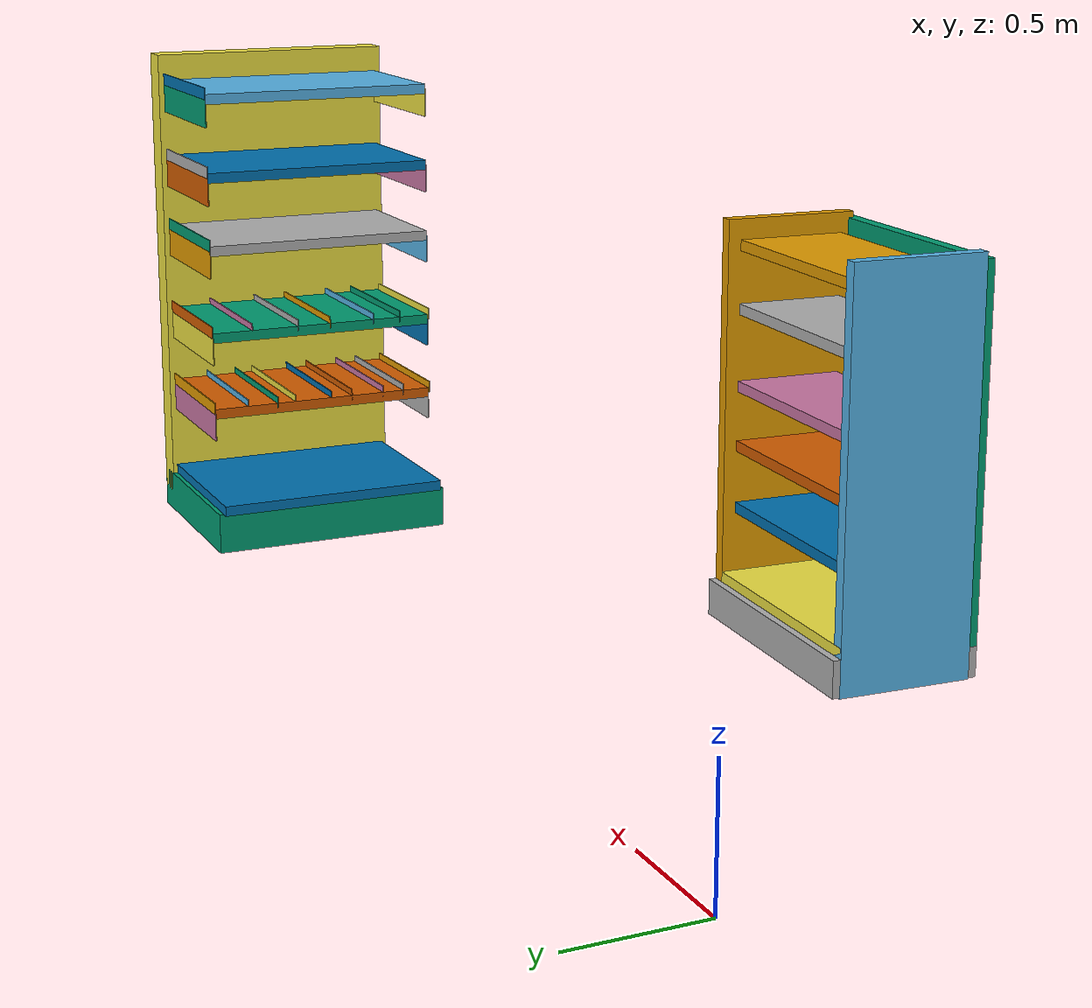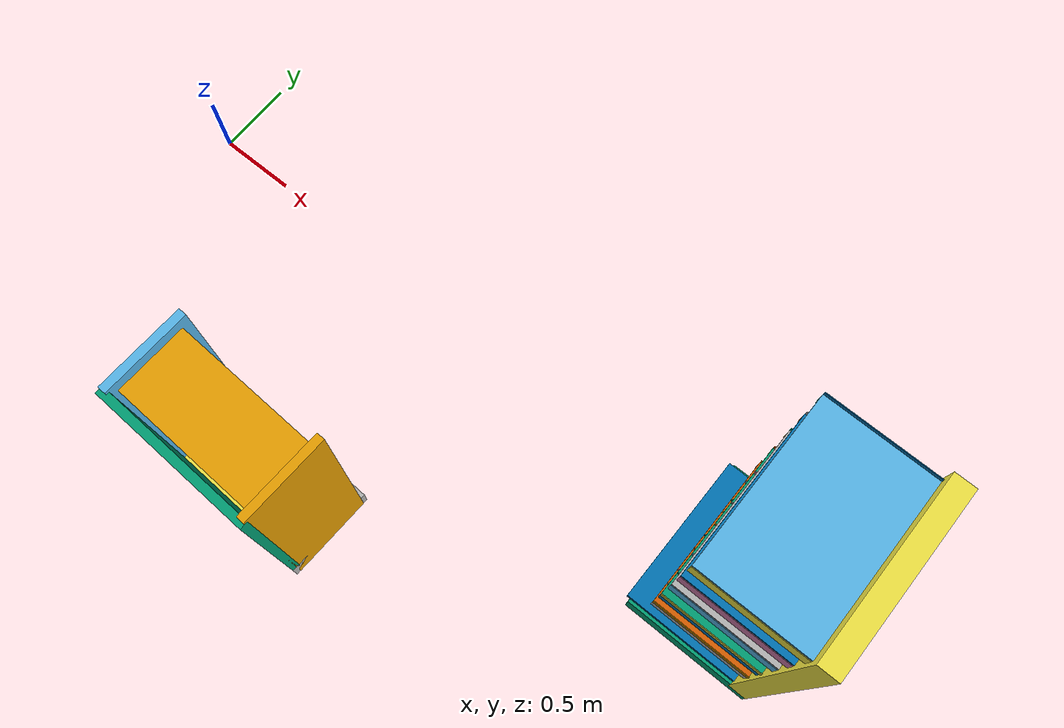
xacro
<?xml version="1.0"?>
<robot name="dm_shelves" xmlns:xacro="http://ros.org/wiki/xacro">

<link name="room_link"/>
    <macro name="divider_link" params="parent name *origin">

        <link name="shelf_1_${name}_link">
            <visual>
                <geometry>
                    <box size="0.004 0.65 0.05"/>
                </geometry>
            </visual>
            <collision>
                <geometry>
                    <box size="0.004 0.65 0.05"/>
                </geometry>
            </collision>
        </link>

        <joint type="fixed" name="shelf_1_${name}_joint">
            <xacro:insert_block name="origin"/>
            <parent link="${parent}"/>
            <child link="shelf_1_${name}_link"/>
        </joint>
    </macro>

    <macro name="shelf_divider" params="parent name dist1 dist2 dist3 dist4 dist5 dist6 dist7 dist8 dist9">
        <divider_link parent="${parent}" name="${name}_divider_1">
            <origin xyz="-0.495 0 0.024"/>
        </divider_link>

        <divider_link parent="${parent}" name="${name}_divider_2">
            <origin xyz="${-0.495 + dist1} 0 0.024"/>
        </divider_link>

        <divider_link parent="${parent}" name="${name}_divider_3">
            <origin xyz="${-0.495 + dist1 + dist2} 0 0.024"/>
        </divider_link>

        <divider_link parent="${parent}" name="${name}_divider_4">
            <origin xyz="${-0.495 + dist1 + dist2 + dist3} 0 0.024"/>
        </divider_link>

        <divider_link parent="${parent}" name="${name}_divider_5">
            <origin xyz="${-0.495 + dist1 + dist2 + dist3 + dist4} 0 0.024"/>
        </divider_link>

        <divider_link parent="${parent}" name="${name}_divider_6">
            <origin xyz="${-0.495 + dist1 + dist2 + dist3 + dist4 + dist5} 0 0.024"/>
        </divider_link>

        <divider_link parent="${parent}" name="${name}_divider_7">
            <origin xyz="${-0.495 + dist1 + dist2 + dist3 + dist4 + dist5 + dist6} 0 0.024"/>
        </divider_link>

        <divider_link parent="${parent}" name="${name}_divider_8">
            <origin xyz="${-0.495 + dist1 + dist2 + dist3 + dist4 + dist5 + dist6 + dist7} 0 0.024"/>
        </divider_link>

        <divider_link parent="${parent}" name="${name}_divider_9">
            <origin xyz="${-0.495 + dist1 + dist2 + dist3 + dist4 + dist5 + dist6 + dist7 + dist8} 0 0.024"/>
        </divider_link>

        <divider_link parent="${parent}" name="${name}_divider_10">
            <origin xyz="${-0.495 + dist1 + dist2 + dist3 + dist4 + dist5 + dist6 + dist7 + dist8 + dist9} 0 0.024"/>
        </divider_link>

    </macro>

    <macro name="shelf_1_level" params="name parent *origin dist1 dist2 dist3 dist4 dist5 dist6 dist7 dist8 dist9">
        <link name="shelf_1_${name}_link">
            <visual>
                <geometry>
                    <box size="0.988 0.65 0.043"/>
                </geometry>
            </visual>
            <collision>
                <geometry>
                    <box size="0.988 0.65 0.043"/>
                </geometry>
            </collision>
        </link>

        <link name="shelf_1_${name}_left_support_link">
            <visual>
                <geometry>
                    <box size="0.004 0.65 0.12"/>
                </geometry>
            </visual>
            <collision>
                <geometry>
                    <box size="0.004 0.65 0.12"/>
                </geometry>
            </collision>
        </link>

        <link name="shelf_1_${name}_right_support_link">
            <visual>
                <geometry>
                    <box size="0.004 0.65 0.12"/>
                </geometry>
            </visual>
            <collision>
                <geometry>
                    <box size="0.004 0.65 0.12"/>
                </geometry>
            </collision>
        </link>

        <joint type="fixed" name="shelf_1_${name}_joint">
            <xacro:insert_block name="origin"/>
            <parent link="${parent}"/>
            <child link="shelf_1_${name}_link"/>
        </joint>

        <joint type="fixed" name="shelf_1_${name}_right_support_joint">
            <origin xyz="0.494 0 -0.06"/>
            <parent link="shelf_1_${name}_link"/>
            <child link="shelf_1_${name}_right_support_link"/>
        </joint>

        <joint type="fixed" name="shelf_1_${name}_left_support_joint">
            <origin xyz="-0.494 0 -0.06"/>
            <parent link="shelf_1_${name}_link"/>
            <child link="shelf_1_${name}_left_support_link"/>
        </joint>

        <shelf_divider parent="shelf_1_${name}_link" name="${name}" dist1="${dist1}" dist2="${dist2}" dist3="${dist3}" dist4="${dist4}" dist5="${dist5}" dist6="${dist6}" dist7="${dist7}" dist8="${dist8}" dist9="${dist9}" />

    </macro>

    <macro name="shelf_2_level" params="name parent *origin">
        <link name="shelf_2_${name}_link">
            <visual>
                <geometry>
                    <box size="0.992 0.435 0.043"/>
                </geometry>
            </visual>
            <collision>
                <geometry>
                    <box size="0.992 0.435 0.043"/>
                </geometry>
            </collision>
        </link>

        <joint type="fixed" name="shelf_2_${name}_joint">
            <xacro:insert_block name="origin"/>
            <parent link="${parent}"/>
            <child link="shelf_2_${name}_link"/>
        </joint>

    </macro>

    <macro name="shelf_1" params="*origin parent">
    <link name="shelf_1_footprint"/>

    <joint type="fixed" name="romm_shleve_1_joint">
        <xacro:insert_block name="origin"/>
        <parent link="${parent}"/>
        <child link="shelf_1_footprint"/>
    </joint>

    <link name="shelf_1_base">
        <visual>
            <geometry>
                <box size="1.04 0.85 0.173"/>
            </geometry>
        </visual>
        <collision>
           <geometry>
                <box size="1.04 0.85 0.173"/>
            </geometry>
        </collision>
    </link>

    <joint type="fixed" name="foot_base_joint">
        <iorigin xyz="0 0 0"/>
        <parent link="shelf_1_footprint"/>
        <child link="shelf_1_base"/>
    </joint>

    <link name="shelf_1_back">
        <visual>
            <geometry>
                <box size="1.04 0.12 2"/>
            </geometry>
        </visual>
        <collision>
           <geometry>
                <box size="1.04 0.12 2"/>
            </geometry>
        </collision>
    </link>

    <joint type="fixed" name="foot_back_joint">
        <origin xyz="0 0.365 1"/>
        <parent link="shelf_1_footprint"/>
        <child link="shelf_1_back"/>
    </joint>

    <link name="shelf_1_level_0_link">
        <visual>
            <geometry>
                <box size="1 0.78 0.043"/>
            </geometry>
        </visual>
        <collision>
           <geometry>
                <box size="1 0.78 0.043"/>
            </geometry>
        </collision>
    </link>

    <joint type="fixed" name="shelf_1_level_0_joint">
        <origin xyz="0 -0.06 0.10665"/>
        <parent link="shelf_1_footprint"/>
        <child link="shelf_1_level_0_link"/>
    </joint>

    <shelf_1_level name="level_1" parent="shelf_1_footprint" dist1="0.15" dist2="0.133" dist3="0.082" dist4="0.167" dist5="0.095" dist6="0.148" dist7="0.095" dist8="0.125" dist9="0" >
        <origin xyz="0 0 0.50965" />
    </shelf_1_level>

    <shelf_1_level name="level_2" parent="shelf_1_footprint" dist1="0.177" dist2="0.208" dist3="0.147" dist4="0.20" dist5="0.124" dist6="0.14" dist7="0" dist8="0" dist9="0" >
        <origin xyz="0 0 0.84465" />
    </shelf_1_level>

    <shelf_1_level name="level_3" parent="shelf_1_footprint" dist1="0" dist2="0" dist3="0" dist4="0" dist5="0" dist6="0" dist7="0" dist8="0" dist9="0" >
        <origin xyz="0 0 1.22265" />
    </shelf_1_level>

    <shelf_1_level name="level_4" parent="shelf_1_footprint" dist1="0" dist2="0" dist3="0" dist4="0" dist5="0" dist6="0" dist7="0" dist8="0" dist9="0" >
        <origin xyz="0 0 1.53565" />
    </shelf_1_level>

    <shelf_1_level name="level_5" parent="shelf_1_footprint" dist1="0" dist2="0" dist3="0" dist4="0" dist5="0" dist6="0" dist7="0" dist8="0" dist9="0" >
        <origin xyz="0 0 1.86865" />
    </shelf_1_level>
</macro>

    <!-- Shelve 2 -->
    <macro name="shelf_2" params="*origin parent">
     <link name="shelf_2_footprint"/>

    <joint type="fixed" name="romm_shleve_2_joint">
        <xacro:insert_block name="origin"/>
        <parent link="${parent}"/>
        <child link="shelf_2_footprint"/>
    </joint>

     <link name="shelf_2_base">
        <visual>
            <geometry>
                <box size="1 0.6 0.145"/>
            </geometry>
        </visual>
        <collision>
           <geometry>
                <box size="1 0.6 0.145"/>
            </geometry>
        </collision>
    </link>

    <joint type="fixed" name="shelf_2_foot_base_joint">
        <iorigin xyz="0 0 0"/>
        <parent link="shelf_2_footprint"/>
        <child link="shelf_2_base"/>
    </joint>

    <link name="shelf_2_left_side">
        <visual>
            <geometry>
                <box size="0.05 0.54 1.6"/>
            </geometry>
        </visual>
        <collision>
           <geometry>
                <box size="0.05 0.54 1.6"/>
            </geometry>
        </collision>
    </link>

    <joint type="fixed" name="shelf_2_foot_left_joint">
        <origin xyz="-0.475 0 0.7225"/>
        <parent link="shelf_2_footprint"/>
        <child link="shelf_2_left_side"/>
    </joint>

    <link name="shelf_2_right_side">
        <visual>
            <geometry>
                <box size="0.05 0.54 1.6"/>
            </geometry>
        </visual>
        <collision>
           <geometry>
                <box size="0.05 0.54 1.6"/>
            </geometry>
        </collision>
    </link>

    <joint type="fixed" name="shelf_2_foot_right_joint">
        <origin xyz="0.475 0 0.7225"/>
        <parent link="shelf_2_footprint"/>
        <child link="shelf_2_right_side"/>
    </joint>

    <link name="shelf_2_back">
        <visual>
            <geometry>
                <box size="1 0.05 1.45"/>
            </geometry>
        </visual>
        <collision>
           <geometry>
                <box size="1 0.05 1.45"/>
            </geometry>
        </collision>
    </link>

    <joint type="fixed" name="shelf_2_foot_back_joint">
        <origin xyz="0 0.275 0.7725"/>
        <parent link="shelf_2_footprint"/>
        <child link="shelf_2_back"/>
    </joint>

    <link name="shelf_2_level_0_link">
        <visual>
            <geometry>
                <box size="0.992 0.54 0.043"/>
            </geometry>
        </visual>
        <collision>
           <geometry>
                <box size="0.992 0.54 0.043"/>
            </geometry>
        </collision>
    </link>

    <joint type="fixed" name="shelf_2_level_0_joint">
        <origin xyz="0 0 0.0925"/>
        <parent link="shelf_2_footprint"/>
        <child link="shelf_2_level_0_link"/>
    </joint>

    <shelf_2_level name="level_1" parent="shelf_2_footprint">
        <origin xyz="0 0.0 0.374"/>
    </shelf_2_level>

    <shelf_2_level name="level_2" parent="shelf_2_footprint">
        <origin xyz="0 0.0 0.624"/>
    </shelf_2_level>

    <shelf_2_level name="level_3" parent="shelf_2_footprint">
        <origin xyz="0 0.0 0.864"/>
    </shelf_2_level>

    <shelf_2_level name="level_4" parent="shelf_2_footprint">
        <origin xyz="0 0.0 1.17"/>
    </shelf_2_level>

    <shelf_2_level name="level_5" parent="shelf_2_footprint">
        <origin xyz="0 0.0 1.42"/>
    </shelf_2_level>

</macro>

<shelf_1 parent="room_link">
    <origin xyz="4.3223 -0.2415761 0.08515" rpy="0 0 -1.5756"/>
</shelf_1>

<shelf_2 parent="room_link">
    <origin xyz="1.7857 -1.52236 0.08515" rpy="0 0 3.09652"/>
</shelf_2>
</robot>
